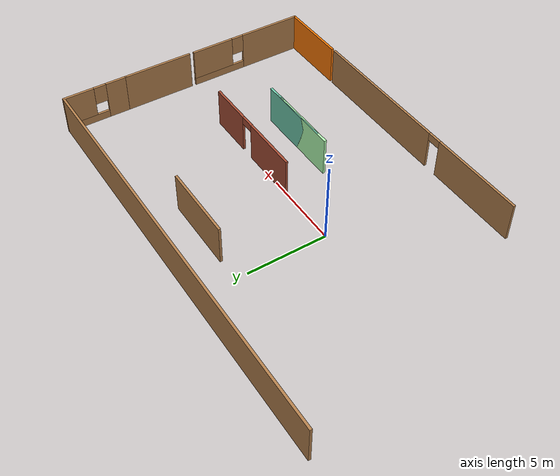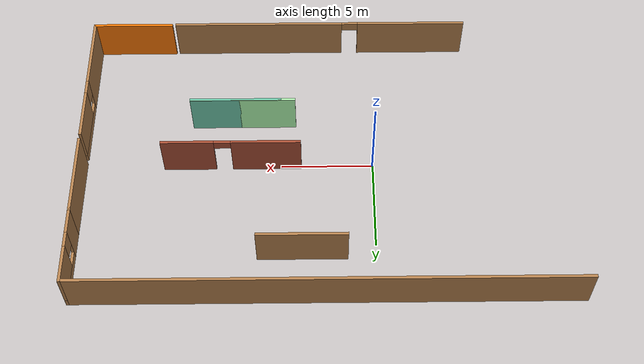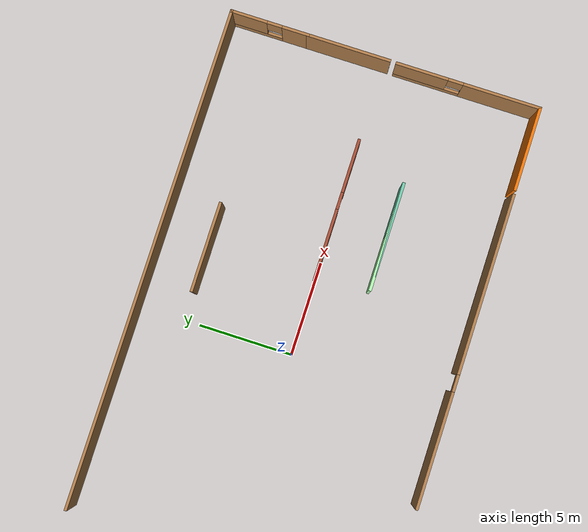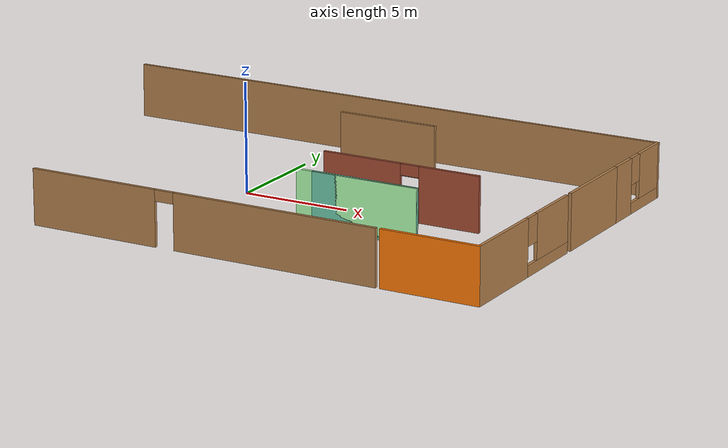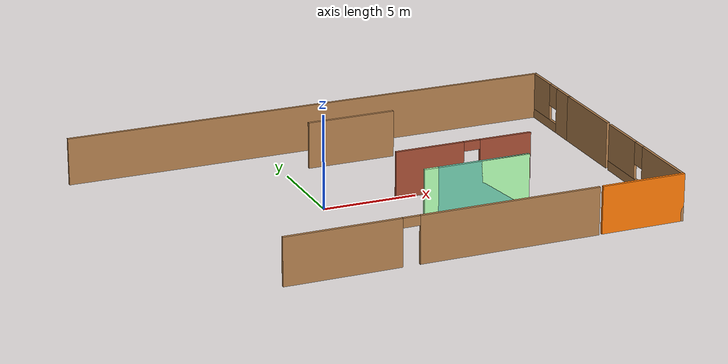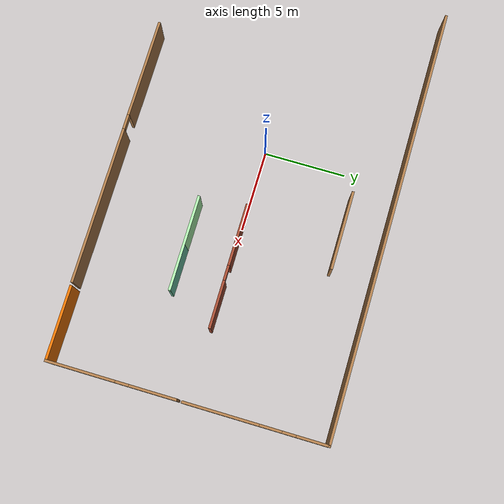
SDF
<sdf version="1.7">
 <model name="floorplan">
  <link name="Wall_10">
   <pose>15.7094 -4.42431 0 0 -0 1.5708</pose>
   <visual name="Wall_10_Visual_0">
    <pose>-1.80178 0 1.25 0 -0 0</pose>
    <geometry><box><size>4.14643 0.15 2.5</size></box></geometry>
    <material>
     <script><uri>file://media/materials/scripts/gazebo.material</uri><name>Gazebo/Wood</name></script>
     <ambient>0.996078 0.47451 0.0196078 1</ambient>
     <shader type="pixel"/>
    </material>
    <meta><layer>0</layer></meta>
   </visual>
   <visual name="Wall_10_Visual_1">
    <pose>2.07322 0 0.25 0 -0 0</pose>
    <geometry><box><size>3.60357 0.15 0.5</size></box></geometry>
    <material>
     <script><uri>file://media/materials/scripts/gazebo.material</uri><name>Gazebo/Wood</name></script>
     <ambient>0.996078 0.47451 0.0196078 1</ambient>
     <shader type="pixel"/>
    </material>
    <meta><layer>0</layer></meta>
   </visual>
   <visual name="Wall_10_Visual_2">
    <pose>2.47322 0 1.5 0 -0 0</pose>
    <geometry><box><size>2.80357 0.15 2</size></box></geometry>
    <material>
     <script><uri>file://media/materials/scripts/gazebo.material</uri><name>Gazebo/Wood</name></script>
     <ambient>0.996078 0.47451 0.0196078 1</ambient>
     <shader type="pixel"/>
    </material>
    <meta><layer>0</layer></meta>
   </visual>
   <visual name="Wall_10_Visual_3">
    <pose>0.671434 0 1.9 0 -0 0</pose>
    <geometry><box><size>0.8 0.15 1.2</size></box></geometry>
    <material>
     <script><uri>file://media/materials/scripts/gazebo.material</uri><name>Gazebo/Wood</name></script>
     <ambient>0.996078 0.47451 0.0196078 1</ambient>
     <shader type="pixel"/>
    </material>
    <meta><layer>0</layer></meta>
   </visual>
   <collision name="Wall_10_Collision_0">
    <pose>-1.80178 0 1.25 0 -0 0</pose>
    <geometry><box><size>4.14643 0.15 2.5</size></box></geometry>
    <surface>
     <friction>
      <ode><mu>1</mu><mu2>1</mu2><fdir1>0 0 0</fdir1><slip1>0</slip1><slip2>0</slip2></ode>
      <torsional>
       <coefficient>1</coefficient>
       <patch_radius>0</patch_radius>
       <surface_radius>0</surface_radius>
       <use_patch_radius>1</use_patch_radius>
       <ode><slip>0</slip></ode>
      </torsional>
     </friction>
     <bounce><restitution_coefficient>0</restitution_coefficient><threshold>1e+06</threshold></bounce>
     <contact>
      <collide_without_contact>0</collide_without_contact>
      <collide_without_contact_bitmask>1</collide_without_contact_bitmask>
      <collide_bitmask>1</collide_bitmask>
      <ode>
       <soft_cfm>0</soft_cfm>
       <soft_erp>0.2</soft_erp>
       <kp>1e+13</kp>
       <kd>1</kd>
       <max_vel>0.01</max_vel>
       <min_depth>0</min_depth>
      </ode>
      <bullet>
       <split_impulse>1</split_impulse>
       <split_impulse_penetration_threshold>-0.01</split_impulse_penetration_threshold>
       <soft_cfm>0</soft_cfm>
       <soft_erp>0.2</soft_erp>
       <kp>1e+13</kp>
       <kd>1</kd>
      </bullet>
     </contact>
    </surface>
   </collision>
   <collision name="Wall_10_Collision_1">
    <pose>2.07322 0 0.25 0 -0 0</pose>
    <geometry><box><size>3.60357 0.15 0.5</size></box></geometry>
    <surface>
     <friction>
      <ode><mu>1</mu><mu2>1</mu2><fdir1>0 0 0</fdir1><slip1>0</slip1><slip2>0</slip2></ode>
      <torsional>
       <coefficient>1</coefficient>
       <patch_radius>0</patch_radius>
       <surface_radius>0</surface_radius>
       <use_patch_radius>1</use_patch_radius>
       <ode><slip>0</slip></ode>
      </torsional>
     </friction>
     <bounce><restitution_coefficient>0</restitution_coefficient><threshold>1e+06</threshold></bounce>
     <contact>
      <collide_without_contact>0</collide_without_contact>
      <collide_without_contact_bitmask>1</collide_without_contact_bitmask>
      <collide_bitmask>1</collide_bitmask>
      <ode>
       <soft_cfm>0</soft_cfm>
       <soft_erp>0.2</soft_erp>
       <kp>1e+13</kp>
       <kd>1</kd>
       <max_vel>0.01</max_vel>
       <min_depth>0</min_depth>
      </ode>
      <bullet>
       <split_impulse>1</split_impulse>
       <split_impulse_penetration_threshold>-0.01</split_impulse_penetration_threshold>
       <soft_cfm>0</soft_cfm>
       <soft_erp>0.2</soft_erp>
       <kp>1e+13</kp>
       <kd>1</kd>
      </bullet>
     </contact>
    </surface>
   </collision>
   <collision name="Wall_10_Collision_2">
    <pose>2.47322 0 1.5 0 -0 0</pose>
    <geometry><box><size>2.80357 0.15 2</size></box></geometry>
    <surface>
     <friction>
      <ode><mu>1</mu><mu2>1</mu2><fdir1>0 0 0</fdir1><slip1>0</slip1><slip2>0</slip2></ode>
      <torsional>
       <coefficient>1</coefficient>
       <patch_radius>0</patch_radius>
       <surface_radius>0</surface_radius>
       <use_patch_radius>1</use_patch_radius>
       <ode><slip>0</slip></ode>
      </torsional>
     </friction>
     <bounce><restitution_coefficient>0</restitution_coefficient><threshold>1e+06</threshold></bounce>
     <contact>
      <collide_without_contact>0</collide_without_contact>
      <collide_without_contact_bitmask>1</collide_without_contact_bitmask>
      <collide_bitmask>1</collide_bitmask>
      <ode>
       <soft_cfm>0</soft_cfm>
       <soft_erp>0.2</soft_erp>
       <kp>1e+13</kp>
       <kd>1</kd>
       <max_vel>0.01</max_vel>
       <min_depth>0</min_depth>
      </ode>
      <bullet>
       <split_impulse>1</split_impulse>
       <split_impulse_penetration_threshold>-0.01</split_impulse_penetration_threshold>
       <soft_cfm>0</soft_cfm>
       <soft_erp>0.2</soft_erp>
       <kp>1e+13</kp>
       <kd>1</kd>
      </bullet>
     </contact>
    </surface>
   </collision>
   <collision name="Wall_10_Collision_3">
    <pose>0.671434 0 1.9 0 -0 0</pose>
    <geometry><box><size>0.8 0.15 1.2</size></box></geometry>
    <surface>
     <friction>
      <ode><mu>1</mu><mu2>1</mu2><fdir1>0 0 0</fdir1><slip1>0</slip1><slip2>0</slip2></ode>
      <torsional>
       <coefficient>1</coefficient>
       <patch_radius>0</patch_radius>
       <surface_radius>0</surface_radius>
       <use_patch_radius>1</use_patch_radius>
       <ode><slip>0</slip></ode>
      </torsional>
     </friction>
     <bounce><restitution_coefficient>0</restitution_coefficient><threshold>1e+06</threshold></bounce>
     <contact>
      <collide_without_contact>0</collide_without_contact>
      <collide_without_contact_bitmask>1</collide_without_contact_bitmask>
      <collide_bitmask>1</collide_bitmask>
      <ode>
       <soft_cfm>0</soft_cfm>
       <soft_erp>0.2</soft_erp>
       <kp>1e+13</kp>
       <kd>1</kd>
       <max_vel>0.01</max_vel>
       <min_depth>0</min_depth>
      </ode>
      <bullet>
       <split_impulse>1</split_impulse>
       <split_impulse_penetration_threshold>-0.01</split_impulse_penetration_threshold>
       <soft_cfm>0</soft_cfm>
       <soft_erp>0.2</soft_erp>
       <kp>1e+13</kp>
       <kd>1</kd>
      </bullet>
     </contact>
    </surface>
   </collision>
  </link>
  <link name="Wall_16">
   <pose>15.725 1.96893 0 0 -0 1.5708</pose>
   <visual name="Wall_16_Visual">
    <pose>0 0 1.25 0 -0 0</pose>
    <geometry><box><size>4.5 0.15 2.5</size></box></geometry>
    <material>
     <script><uri>file://media/materials/scripts/gazebo.material</uri><name>Gazebo/Wood</name></script>
     <ambient>0.996078 0.47451 0.0196078 1</ambient>
     <shader type="pixel"/>
    </material>
    <meta><layer>0</layer></meta>
   </visual>
   <collision name="Wall_16_Collision">
    <pose>0 0 1.25 0 -0 0</pose>
    <geometry><box><size>4.5 0.15 2.5</size></box></geometry>
    <surface>
     <friction>
      <ode><mu>1</mu><mu2>1</mu2><fdir1>0 0 0</fdir1><slip1>0</slip1><slip2>0</slip2></ode>
      <torsional>
       <coefficient>1</coefficient>
       <patch_radius>0</patch_radius>
       <surface_radius>0</surface_radius>
       <use_patch_radius>1</use_patch_radius>
       <ode><slip>0</slip></ode>
      </torsional>
     </friction>
     <bounce><restitution_coefficient>0</restitution_coefficient><threshold>1e+06</threshold></bounce>
     <contact>
      <collide_without_contact>0</collide_without_contact>
      <collide_without_contact_bitmask>1</collide_without_contact_bitmask>
      <collide_bitmask>1</collide_bitmask>
      <ode>
       <soft_cfm>0</soft_cfm>
       <soft_erp>0.2</soft_erp>
       <kp>1e+13</kp>
       <kd>1</kd>
       <max_vel>0.01</max_vel>
       <min_depth>0</min_depth>
      </ode>
      <bullet>
       <split_impulse>1</split_impulse>
       <split_impulse_penetration_threshold>-0.01</split_impulse_penetration_threshold>
       <soft_cfm>0</soft_cfm>
       <soft_erp>0.2</soft_erp>
       <kp>1e+13</kp>
       <kd>1</kd>
      </bullet>
     </contact>
    </surface>
   </collision>
  </link>
  <link name="Wall_20">
   <pose>15.725 6.19393 0 0 -0 1.5708</pose>
   <visual name="Wall_20_Visual_0">
    <pose>-1.39393 0 1.25 0 -0 0</pose>
    <geometry><box><size>1.46215 0.15 2.5</size></box></geometry>
    <material>
     <script><uri>file://media/materials/scripts/gazebo.material</uri><name>Gazebo/Wood</name></script>
     <ambient>1 1 1 1</ambient>
     <shader type="pixel"/>
    </material>
    <meta><layer>0</layer></meta>
   </visual>
   <visual name="Wall_20_Visual_1">
    <pose>0.731073 0 0.25 0 -0 0</pose>
    <geometry><box><size>2.78785 0.15 0.5</size></box></geometry>
    <material>
     <script><uri>file://media/materials/scripts/gazebo.material</uri><name>Gazebo/Wood</name></script>
     <ambient>1 1 1 1</ambient>
     <shader type="pixel"/>
    </material>
    <meta><layer>0</layer></meta>
   </visual>
   <visual name="Wall_20_Visual_2">
    <pose>1.13107 0 1.5 0 -0 0</pose>
    <geometry><box><size>1.98785 0.15 2</size></box></geometry>
    <material>
     <script><uri>file://media/materials/scripts/gazebo.material</uri><name>Gazebo/Wood</name></script>
     <ambient>1 1 1 1</ambient>
     <shader type="pixel"/>
    </material>
    <meta><layer>0</layer></meta>
   </visual>
   <visual name="Wall_20_Visual_3">
    <pose>-0.262854 0 1.9 0 -0 0</pose>
    <geometry><box><size>0.8 0.15 1.2</size></box></geometry>
    <material>
     <script><uri>file://media/materials/scripts/gazebo.material</uri><name>Gazebo/Wood</name></script>
     <ambient>1 1 1 1</ambient>
     <shader type="pixel"/>
    </material>
    <meta><layer>0</layer></meta>
   </visual>
   <collision name="Wall_20_Collision_0">
    <pose>-1.39393 0 1.25 0 -0 0</pose>
    <geometry><box><size>1.46215 0.15 2.5</size></box></geometry>
    <surface>
     <friction>
      <ode><mu>1</mu><mu2>1</mu2><fdir1>0 0 0</fdir1><slip1>0</slip1><slip2>0</slip2></ode>
      <torsional>
       <coefficient>1</coefficient>
       <patch_radius>0</patch_radius>
       <surface_radius>0</surface_radius>
       <use_patch_radius>1</use_patch_radius>
       <ode><slip>0</slip></ode>
      </torsional>
     </friction>
     <bounce><restitution_coefficient>0</restitution_coefficient><threshold>1e+06</threshold></bounce>
     <contact>
      <collide_without_contact>0</collide_without_contact>
      <collide_without_contact_bitmask>1</collide_without_contact_bitmask>
      <collide_bitmask>1</collide_bitmask>
      <ode>
       <soft_cfm>0</soft_cfm>
       <soft_erp>0.2</soft_erp>
       <kp>1e+13</kp>
       <kd>1</kd>
       <max_vel>0.01</max_vel>
       <min_depth>0</min_depth>
      </ode>
      <bullet>
       <split_impulse>1</split_impulse>
       <split_impulse_penetration_threshold>-0.01</split_impulse_penetration_threshold>
       <soft_cfm>0</soft_cfm>
       <soft_erp>0.2</soft_erp>
       <kp>1e+13</kp>
       <kd>1</kd>
      </bullet>
     </contact>
    </surface>
   </collision>
   <collision name="Wall_20_Collision_1">
    <pose>0.731073 0 0.25 0 -0 0</pose>
    <geometry><box><size>2.78785 0.15 0.5</size></box></geometry>
    <surface>
     <friction>
      <ode><mu>1</mu><mu2>1</mu2><fdir1>0 0 0</fdir1><slip1>0</slip1><slip2>0</slip2></ode>
      <torsional>
       <coefficient>1</coefficient>
       <patch_radius>0</patch_radius>
       <surface_radius>0</surface_radius>
       <use_patch_radius>1</use_patch_radius>
       <ode><slip>0</slip></ode>
      </torsional>
     </friction>
     <bounce><restitution_coefficient>0</restitution_coefficient><threshold>1e+06</threshold></bounce>
     <contact>
      <collide_without_contact>0</collide_without_contact>
      <collide_without_contact_bitmask>1</collide_without_contact_bitmask>
      <collide_bitmask>1</collide_bitmask>
      <ode>
       <soft_cfm>0</soft_cfm>
       <soft_erp>0.2</soft_erp>
       <kp>1e+13</kp>
       <kd>1</kd>
       <max_vel>0.01</max_vel>
       <min_depth>0</min_depth>
      </ode>
      <bullet>
       <split_impulse>1</split_impulse>
       <split_impulse_penetration_threshold>-0.01</split_impulse_penetration_threshold>
       <soft_cfm>0</soft_cfm>
       <soft_erp>0.2</soft_erp>
       <kp>1e+13</kp>
       <kd>1</kd>
      </bullet>
     </contact>
    </surface>
   </collision>
   <collision name="Wall_20_Collision_2">
    <pose>1.13107 0 1.5 0 -0 0</pose>
    <geometry><box><size>1.98785 0.15 2</size></box></geometry>
    <surface>
     <friction>
      <ode><mu>1</mu><mu2>1</mu2><fdir1>0 0 0</fdir1><slip1>0</slip1><slip2>0</slip2></ode>
      <torsional>
       <coefficient>1</coefficient>
       <patch_radius>0</patch_radius>
       <surface_radius>0</surface_radius>
       <use_patch_radius>1</use_patch_radius>
       <ode><slip>0</slip></ode>
      </torsional>
     </friction>
     <bounce><restitution_coefficient>0</restitution_coefficient><threshold>1e+06</threshold></bounce>
     <contact>
      <collide_without_contact>0</collide_without_contact>
      <collide_without_contact_bitmask>1</collide_without_contact_bitmask>
      <collide_bitmask>1</collide_bitmask>
      <ode>
       <soft_cfm>0</soft_cfm>
       <soft_erp>0.2</soft_erp>
       <kp>1e+13</kp>
       <kd>1</kd>
       <max_vel>0.01</max_vel>
       <min_depth>0</min_depth>
      </ode>
      <bullet>
       <split_impulse>1</split_impulse>
       <split_impulse_penetration_threshold>-0.01</split_impulse_penetration_threshold>
       <soft_cfm>0</soft_cfm>
       <soft_erp>0.2</soft_erp>
       <kp>1e+13</kp>
       <kd>1</kd>
      </bullet>
     </contact>
    </surface>
   </collision>
   <collision name="Wall_20_Collision_3">
    <pose>-0.262854 0 1.9 0 -0 0</pose>
    <geometry><box><size>0.8 0.15 1.2</size></box></geometry>
    <surface>
     <friction>
      <ode><mu>1</mu><mu2>1</mu2><fdir1>0 0 0</fdir1><slip1>0</slip1><slip2>0</slip2></ode>
      <torsional>
       <coefficient>1</coefficient>
       <patch_radius>0</patch_radius>
       <surface_radius>0</surface_radius>
       <use_patch_radius>1</use_patch_radius>
       <ode><slip>0</slip></ode>
      </torsional>
     </friction>
     <bounce><restitution_coefficient>0</restitution_coefficient><threshold>1e+06</threshold></bounce>
     <contact>
      <collide_without_contact>0</collide_without_contact>
      <collide_without_contact_bitmask>1</collide_without_contact_bitmask>
      <collide_bitmask>1</collide_bitmask>
      <ode>
       <soft_cfm>0</soft_cfm>
       <soft_erp>0.2</soft_erp>
       <kp>1e+13</kp>
       <kd>1</kd>
       <max_vel>0.01</max_vel>
       <min_depth>0</min_depth>
      </ode>
      <bullet>
       <split_impulse>1</split_impulse>
       <split_impulse_penetration_threshold>-0.01</split_impulse_penetration_threshold>
       <soft_cfm>0</soft_cfm>
       <soft_erp>0.2</soft_erp>
       <kp>1e+13</kp>
       <kd>1</kd>
      </bullet>
     </contact>
    </surface>
   </collision>
  </link>
  <link name="Wall_21">
   <pose>2.55 8.24393 0 0 -0 3.14159</pose>
   <visual name="Wall_21_Visual">
    <pose>0 0 1.25 0 -0 0</pose>
    <geometry><box><size>26.5 0.15 2.5</size></box></geometry>
    <material>
     <script><uri>file://media/materials/scripts/gazebo.material</uri><name>Gazebo/Wood</name></script>
     <ambient>0.435294 0.796078 0.67451 1</ambient>
     <shader type="pixel"/>
    </material>
    <meta><layer>0</layer></meta>
   </visual>
   <collision name="Wall_21_Collision">
    <pose>0 0 1.25 0 -0 0</pose>
    <geometry><box><size>26.5 0.15 2.5</size></box></geometry>
    <surface>
     <friction>
      <ode><mu>1</mu><mu2>1</mu2><fdir1>0 0 0</fdir1><slip1>0</slip1><slip2>0</slip2></ode>
      <torsional>
       <coefficient>1</coefficient>
       <patch_radius>0</patch_radius>
       <surface_radius>0</surface_radius>
       <use_patch_radius>1</use_patch_radius>
       <ode><slip>0</slip></ode>
      </torsional>
     </friction>
     <bounce><restitution_coefficient>0</restitution_coefficient><threshold>1e+06</threshold></bounce>
     <contact>
      <collide_without_contact>0</collide_without_contact>
      <collide_without_contact_bitmask>1</collide_without_contact_bitmask>
      <collide_bitmask>1</collide_bitmask>
      <ode>
       <soft_cfm>0</soft_cfm>
       <soft_erp>0.2</soft_erp>
       <kp>1e+13</kp>
       <kd>1</kd>
       <max_vel>0.01</max_vel>
       <min_depth>0</min_depth>
      </ode>
      <bullet>
       <split_impulse>1</split_impulse>
       <split_impulse_penetration_threshold>-0.01</split_impulse_penetration_threshold>
       <soft_cfm>0</soft_cfm>
       <soft_erp>0.2</soft_erp>
       <kp>1e+13</kp>
       <kd>1</kd>
      </bullet>
     </contact>
    </surface>
   </collision>
  </link>
  <link name="Wall_30">
   <pose>7.65692 0.027575 0 0 -0 0</pose>
   <visual name="Wall_30_Visual_0">
    <pose>-1.87765 0 1.25 0 -0 0</pose>
    <geometry><box><size>3.74469 0.15 2.5</size></box></geometry>
    <material>
     <script><uri>file://media/materials/scripts/gazebo.material</uri><name>Gazebo/Bricks</name></script>
     <ambient>1 1 1 1</ambient>
     <shader type="pixel"/>
    </material>
    <meta><layer>0</layer></meta>
   </visual>
   <visual name="Wall_30_Visual_1">
    <pose>2.32235 0 1.25 0 -0 0</pose>
    <geometry><box><size>2.85531 0.15 2.5</size></box></geometry>
    <material>
     <script><uri>file://media/materials/scripts/gazebo.material</uri><name>Gazebo/Bricks</name></script>
     <ambient>1 1 1 1</ambient>
     <shader type="pixel"/>
    </material>
    <meta><layer>0</layer></meta>
   </visual>
   <visual name="Wall_30_Visual_2">
    <pose>0.444693 0 2.25 0 -0 0</pose>
    <geometry><box><size>0.9 0.15 0.5</size></box></geometry>
    <material>
     <script><uri>file://media/materials/scripts/gazebo.material</uri><name>Gazebo/Bricks</name></script>
     <ambient>1 1 1 1</ambient>
     <shader type="pixel"/>
    </material>
    <meta><layer>0</layer></meta>
   </visual>
   <collision name="Wall_30_Collision_0">
    <pose>-1.87765 0 1.25 0 -0 0</pose>
    <geometry><box><size>3.74469 0.15 2.5</size></box></geometry>
    <surface>
     <friction>
      <ode><mu>1</mu><mu2>1</mu2><fdir1>0 0 0</fdir1><slip1>0</slip1><slip2>0</slip2></ode>
      <torsional>
       <coefficient>1</coefficient>
       <patch_radius>0</patch_radius>
       <surface_radius>0</surface_radius>
       <use_patch_radius>1</use_patch_radius>
       <ode><slip>0</slip></ode>
      </torsional>
     </friction>
     <bounce><restitution_coefficient>0</restitution_coefficient><threshold>1e+06</threshold></bounce>
     <contact>
      <collide_without_contact>0</collide_without_contact>
      <collide_without_contact_bitmask>1</collide_without_contact_bitmask>
      <collide_bitmask>1</collide_bitmask>
      <ode>
       <soft_cfm>0</soft_cfm>
       <soft_erp>0.2</soft_erp>
       <kp>1e+13</kp>
       <kd>1</kd>
       <max_vel>0.01</max_vel>
       <min_depth>0</min_depth>
      </ode>
      <bullet>
       <split_impulse>1</split_impulse>
       <split_impulse_penetration_threshold>-0.01</split_impulse_penetration_threshold>
       <soft_cfm>0</soft_cfm>
       <soft_erp>0.2</soft_erp>
       <kp>1e+13</kp>
       <kd>1</kd>
      </bullet>
     </contact>
    </surface>
   </collision>
   <collision name="Wall_30_Collision_1">
    <pose>2.32235 0 1.25 0 -0 0</pose>
    <geometry><box><size>2.85531 0.15 2.5</size></box></geometry>
    <surface>
     <friction>
      <ode><mu>1</mu><mu2>1</mu2><fdir1>0 0 0</fdir1><slip1>0</slip1><slip2>0</slip2></ode>
      <torsional>
       <coefficient>1</coefficient>
       <patch_radius>0</patch_radius>
       <surface_radius>0</surface_radius>
       <use_patch_radius>1</use_patch_radius>
       <ode><slip>0</slip></ode>
      </torsional>
     </friction>
     <bounce><restitution_coefficient>0</restitution_coefficient><threshold>1e+06</threshold></bounce>
     <contact>
      <collide_without_contact>0</collide_without_contact>
      <collide_without_contact_bitmask>1</collide_without_contact_bitmask>
      <collide_bitmask>1</collide_bitmask>
      <ode>
       <soft_cfm>0</soft_cfm>
       <soft_erp>0.2</soft_erp>
       <kp>1e+13</kp>
       <kd>1</kd>
       <max_vel>0.01</max_vel>
       <min_depth>0</min_depth>
      </ode>
      <bullet>
       <split_impulse>1</split_impulse>
       <split_impulse_penetration_threshold>-0.01</split_impulse_penetration_threshold>
       <soft_cfm>0</soft_cfm>
       <soft_erp>0.2</soft_erp>
       <kp>1e+13</kp>
       <kd>1</kd>
      </bullet>
     </contact>
    </surface>
   </collision>
   <collision name="Wall_30_Collision_2">
    <pose>0.444693 0 2.25 0 -0 0</pose>
    <geometry><box><size>0.9 0.15 0.5</size></box></geometry>
    <surface>
     <friction>
      <ode><mu>1</mu><mu2>1</mu2><fdir1>0 0 0</fdir1><slip1>0</slip1><slip2>0</slip2></ode>
      <torsional>
       <coefficient>1</coefficient>
       <patch_radius>0</patch_radius>
       <surface_radius>0</surface_radius>
       <use_patch_radius>1</use_patch_radius>
       <ode><slip>0</slip></ode>
      </torsional>
     </friction>
     <bounce><restitution_coefficient>0</restitution_coefficient><threshold>1e+06</threshold></bounce>
     <contact>
      <collide_without_contact>0</collide_without_contact>
      <collide_without_contact_bitmask>1</collide_without_contact_bitmask>
      <collide_bitmask>1</collide_bitmask>
      <ode>
       <soft_cfm>0</soft_cfm>
       <soft_erp>0.2</soft_erp>
       <kp>1e+13</kp>
       <kd>1</kd>
       <max_vel>0.01</max_vel>
       <min_depth>0</min_depth>
      </ode>
      <bullet>
       <split_impulse>1</split_impulse>
       <split_impulse_penetration_threshold>-0.01</split_impulse_penetration_threshold>
       <soft_cfm>0</soft_cfm>
       <soft_erp>0.2</soft_erp>
       <kp>1e+13</kp>
       <kd>1</kd>
      </bullet>
     </contact>
    </surface>
   </collision>
  </link>
  <link name="Wall_36">
   <pose>3.83685 5.71707 0 0 -0 0</pose>
   <visual name="Wall_36_Visual">
    <pose>0 0 1.25 0 -0 0</pose>
    <geometry><box><size>4.75 0.15 2.5</size></box></geometry>
    <material>
     <script><uri>file://media/materials/scripts/gazebo.material</uri><name>Gazebo/Wood</name></script>
     <ambient>1 1 1 1</ambient>
     <shader type="pixel"/>
    </material>
    <meta><layer>0</layer></meta>
   </visual>
   <collision name="Wall_36_Collision">
    <pose>0 0 1.25 0 -0 0</pose>
    <geometry><box><size>4.75 0.15 2.5</size></box></geometry>
    <surface>
     <friction>
      <ode><mu>1</mu><mu2>1</mu2><fdir1>0 0 0</fdir1><slip1>0</slip1><slip2>0</slip2></ode>
      <torsional>
       <coefficient>1</coefficient>
       <patch_radius>0</patch_radius>
       <surface_radius>0</surface_radius>
       <use_patch_radius>1</use_patch_radius>
       <ode><slip>0</slip></ode>
      </torsional>
     </friction>
     <bounce><restitution_coefficient>0</restitution_coefficient><threshold>1e+06</threshold></bounce>
     <contact>
      <collide_without_contact>0</collide_without_contact>
      <collide_without_contact_bitmask>1</collide_without_contact_bitmask>
      <collide_bitmask>1</collide_bitmask>
      <ode>
       <soft_cfm>0</soft_cfm>
       <soft_erp>0.2</soft_erp>
       <kp>1e+13</kp>
       <kd>1</kd>
       <max_vel>0.01</max_vel>
       <min_depth>0</min_depth>
      </ode>
      <bullet>
       <split_impulse>1</split_impulse>
       <split_impulse_penetration_threshold>-0.01</split_impulse_penetration_threshold>
       <soft_cfm>0</soft_cfm>
       <soft_erp>0.2</soft_erp>
       <kp>1e+13</kp>
       <kd>1</kd>
      </bullet>
     </contact>
    </surface>
   </collision>
  </link>
  <link name="Wall_42">
   <pose>7.47697 -2.78983 0 0 -0 0</pose>
   <visual name="Wall_42_Visual">
    <pose>0 0 1.25 0 -0 0</pose>
    <geometry><box><size>5 0.15 2.5</size></box></geometry>
    <material>
     <script><uri>file://media/materials/scripts/gazebo.material</uri><name>Gazebo/Grey</name></script>
     <ambient>0.435294 0.796078 0.67451 1</ambient>
     <shader type="pixel"/>
    </material>
    <meta><layer>0</layer></meta>
   </visual>
   <collision name="Wall_42_Collision">
    <pose>0 0 1.25 0 -0 0</pose>
    <geometry><box><size>5 0.15 2.5</size></box></geometry>
    <surface>
     <friction>
      <ode><mu>1</mu><mu2>1</mu2><fdir1>0 0 0</fdir1><slip1>0</slip1><slip2>0</slip2></ode>
      <torsional>
       <coefficient>1</coefficient>
       <patch_radius>0</patch_radius>
       <surface_radius>0</surface_radius>
       <use_patch_radius>1</use_patch_radius>
       <ode><slip>0</slip></ode>
      </torsional>
     </friction>
     <bounce><restitution_coefficient>0</restitution_coefficient><threshold>1e+06</threshold></bounce>
     <contact>
      <collide_without_contact>0</collide_without_contact>
      <collide_without_contact_bitmask>1</collide_without_contact_bitmask>
      <collide_bitmask>1</collide_bitmask>
      <ode>
       <soft_cfm>0</soft_cfm>
       <soft_erp>0.2</soft_erp>
       <kp>1e+13</kp>
       <kd>1</kd>
       <max_vel>0.01</max_vel>
       <min_depth>0</min_depth>
      </ode>
      <bullet>
       <split_impulse>1</split_impulse>
       <split_impulse_penetration_threshold>-0.01</split_impulse_penetration_threshold>
       <soft_cfm>0</soft_cfm>
       <soft_erp>0.2</soft_erp>
       <kp>1e+13</kp>
       <kd>1</kd>
      </bullet>
     </contact>
    </surface>
   </collision>
  </link>
  <link name="Wall_43">
   <pose>7.10197 -2.78983 0 0 -0 3.14159</pose>
   <inertial>
    <mass>1</mass>
    <inertia><ixx>1</ixx><ixy>0</ixy><ixz>0</ixz><iyy>1</iyy><iyz>0</iyz><izz>1</izz></inertia>
   </inertial>
   <visual name="Wall_43_Visual">
    <pose>0 0 1.25 0 -0 0</pose>
    <geometry><box><size>5.75 0.15 2.5</size></box></geometry>
    <material>
     <script><uri>file://media/materials/scripts/gazebo.material</uri><name>Gazebo/Grey</name></script>
     <ambient>1 1 1 1</ambient>
     <shader type="pixel"><normal_map>__default__</normal_map></shader>
     <diffuse>0.7 1 0.7 1</diffuse>
     <specular>0.01 1 0.01 1</specular>
     <emissive>0 1 0 1</emissive>
    </material>
    <meta><layer>0</layer></meta>
   </visual>
   <collision name="Wall_43_Collision">
    <pose>0 0 1.25 0 -0 0</pose>
    <geometry><box><size>5.75 0.15 2.5</size></box></geometry>
    <surface>
     <friction>
      <ode><mu>1</mu><mu2>1</mu2><fdir1>0 0 0</fdir1><slip1>0</slip1><slip2>0</slip2></ode>
      <torsional>
       <coefficient>1</coefficient>
       <patch_radius>0</patch_radius>
       <surface_radius>0</surface_radius>
       <use_patch_radius>1</use_patch_radius>
       <ode><slip>0</slip></ode>
      </torsional>
     </friction>
     <bounce><restitution_coefficient>0</restitution_coefficient><threshold>1e+06</threshold></bounce>
     <contact>
      <collide_without_contact>0</collide_without_contact>
      <collide_without_contact_bitmask>1</collide_without_contact_bitmask>
      <collide_bitmask>1</collide_bitmask>
      <ode>
       <soft_cfm>0</soft_cfm>
       <soft_erp>0.2</soft_erp>
       <kp>1e+13</kp>
       <kd>1</kd>
       <max_vel>0.01</max_vel>
       <min_depth>0</min_depth>
      </ode>
      <bullet>
       <split_impulse>1</split_impulse>
       <split_impulse_penetration_threshold>-0.01</split_impulse_penetration_threshold>
       <soft_cfm>0</soft_cfm>
       <soft_erp>0.2</soft_erp>
       <kp>1e+13</kp>
       <kd>1</kd>
      </bullet>
     </contact>
    </surface>
   </collision>
  </link>
  <link name="Wall_7">
   <pose>2.86483 -8.24393 0 0 -0 0</pose>
   <visual name="Wall_7_Visual_0">
    <pose>-5.20927 0 1.25 0 -0 0</pose>
    <geometry><box><size>6.08146 0.15 2.5</size></box></geometry>
    <material>
     <script><uri>file://media/materials/scripts/gazebo.material</uri><name>Gazebo/Wood</name></script>
     <ambient>0.996078 0.47451 0.0196078 1</ambient>
     <shader type="pixel"/>
    </material>
    <meta><layer>0</layer></meta>
   </visual>
   <visual name="Wall_7_Visual_1">
    <pose>3.49073 0 1.25 0 -0 0</pose>
    <geometry><box><size>9.51854 0.15 2.5</size></box></geometry>
    <material>
     <script><uri>file://media/materials/scripts/gazebo.material</uri><name>Gazebo/Wood</name></script>
     <ambient>0.996078 0.47451 0.0196078 1</ambient>
     <shader type="pixel"/>
    </material>
    <meta><layer>0</layer></meta>
   </visual>
   <visual name="Wall_7_Visual_2">
    <pose>-1.71854 0 2.25 0 -0 0</pose>
    <geometry><box><size>0.9 0.15 0.5</size></box></geometry>
    <material>
     <script><uri>file://media/materials/scripts/gazebo.material</uri><name>Gazebo/Wood</name></script>
     <ambient>0.996078 0.47451 0.0196078 1</ambient>
     <shader type="pixel"/>
    </material>
    <meta><layer>0</layer></meta>
   </visual>
   <collision name="Wall_7_Collision_0">
    <pose>-5.20927 0 1.25 0 -0 0</pose>
    <geometry><box><size>6.08146 0.15 2.5</size></box></geometry>
    <surface>
     <friction>
      <ode><mu>1</mu><mu2>1</mu2><fdir1>0 0 0</fdir1><slip1>0</slip1><slip2>0</slip2></ode>
      <torsional>
       <coefficient>1</coefficient>
       <patch_radius>0</patch_radius>
       <surface_radius>0</surface_radius>
       <use_patch_radius>1</use_patch_radius>
       <ode><slip>0</slip></ode>
      </torsional>
     </friction>
     <bounce><restitution_coefficient>0</restitution_coefficient><threshold>1e+06</threshold></bounce>
     <contact>
      <collide_without_contact>0</collide_without_contact>
      <collide_without_contact_bitmask>1</collide_without_contact_bitmask>
      <collide_bitmask>1</collide_bitmask>
      <ode>
       <soft_cfm>0</soft_cfm>
       <soft_erp>0.2</soft_erp>
       <kp>1e+13</kp>
       <kd>1</kd>
       <max_vel>0.01</max_vel>
       <min_depth>0</min_depth>
      </ode>
      <bullet>
       <split_impulse>1</split_impulse>
       <split_impulse_penetration_threshold>-0.01</split_impulse_penetration_threshold>
       <soft_cfm>0</soft_cfm>
       <soft_erp>0.2</soft_erp>
       <kp>1e+13</kp>
       <kd>1</kd>
      </bullet>
     </contact>
    </surface>
   </collision>
   <collision name="Wall_7_Collision_1">
    <pose>3.49073 0 1.25 0 -0 0</pose>
    <geometry><box><size>9.51854 0.15 2.5</size></box></geometry>
    <surface>
     <friction>
      <ode><mu>1</mu><mu2>1</mu2><fdir1>0 0 0</fdir1><slip1>0</slip1><slip2>0</slip2></ode>
      <torsional>
       <coefficient>1</coefficient>
       <patch_radius>0</patch_radius>
       <surface_radius>0</surface_radius>
       <use_patch_radius>1</use_patch_radius>
       <ode><slip>0</slip></ode>
      </torsional>
     </friction>
     <bounce><restitution_coefficient>0</restitution_coefficient><threshold>1e+06</threshold></bounce>
     <contact>
      <collide_without_contact>0</collide_without_contact>
      <collide_without_contact_bitmask>1</collide_without_contact_bitmask>
      <collide_bitmask>1</collide_bitmask>
      <ode>
       <soft_cfm>0</soft_cfm>
       <soft_erp>0.2</soft_erp>
       <kp>1e+13</kp>
       <kd>1</kd>
       <max_vel>0.01</max_vel>
       <min_depth>0</min_depth>
      </ode>
      <bullet>
       <split_impulse>1</split_impulse>
       <split_impulse_penetration_threshold>-0.01</split_impulse_penetration_threshold>
       <soft_cfm>0</soft_cfm>
       <soft_erp>0.2</soft_erp>
       <kp>1e+13</kp>
       <kd>1</kd>
      </bullet>
     </contact>
    </surface>
   </collision>
   <collision name="Wall_7_Collision_2">
    <pose>-1.71854 0 2.25 0 -0 0</pose>
    <geometry><box><size>0.9 0.15 0.5</size></box></geometry>
    <surface>
     <friction>
      <ode><mu>1</mu><mu2>1</mu2><fdir1>0 0 0</fdir1><slip1>0</slip1><slip2>0</slip2></ode>
      <torsional>
       <coefficient>1</coefficient>
       <patch_radius>0</patch_radius>
       <surface_radius>0</surface_radius>
       <use_patch_radius>1</use_patch_radius>
       <ode><slip>0</slip></ode>
      </torsional>
     </friction>
     <bounce><restitution_coefficient>0</restitution_coefficient><threshold>1e+06</threshold></bounce>
     <contact>
      <collide_without_contact>0</collide_without_contact>
      <collide_without_contact_bitmask>1</collide_without_contact_bitmask>
      <collide_bitmask>1</collide_bitmask>
      <ode>
       <soft_cfm>0</soft_cfm>
       <soft_erp>0.2</soft_erp>
       <kp>1e+13</kp>
       <kd>1</kd>
       <max_vel>0.01</max_vel>
       <min_depth>0</min_depth>
      </ode>
      <bullet>
       <split_impulse>1</split_impulse>
       <split_impulse_penetration_threshold>-0.01</split_impulse_penetration_threshold>
       <soft_cfm>0</soft_cfm>
       <soft_erp>0.2</soft_erp>
       <kp>1e+13</kp>
       <kd>1</kd>
      </bullet>
     </contact>
    </surface>
   </collision>
  </link>
  <link name="Wall_9">
   <pose>13.5344 -8.22431 0 0 -0 0</pose>
   <visual name="Wall_9_Visual">
    <pose>0 0 1.25 0 -0 0</pose>
    <geometry><box><size>4.5 0.15 2.5</size></box></geometry>
    <material>
     <script><uri>file://media/materials/scripts/gazebo.material</uri><name>Gazebo/Grey</name></script>
     <ambient>0.996078 0.47451 0.0196078 1</ambient>
     <shader type="pixel"/>
    </material>
    <meta><layer>0</layer></meta>
   </visual>
   <collision name="Wall_9_Collision">
    <pose>0 0 1.25 0 -0 0</pose>
    <geometry><box><size>4.5 0.15 2.5</size></box></geometry>
    <surface>
     <friction>
      <ode><mu>1</mu><mu2>1</mu2><fdir1>0 0 0</fdir1><slip1>0</slip1><slip2>0</slip2></ode>
      <torsional>
       <coefficient>1</coefficient>
       <patch_radius>0</patch_radius>
       <surface_radius>0</surface_radius>
       <use_patch_radius>1</use_patch_radius>
       <ode><slip>0</slip></ode>
      </torsional>
     </friction>
     <bounce><restitution_coefficient>0</restitution_coefficient><threshold>1e+06</threshold></bounce>
     <contact>
      <collide_without_contact>0</collide_without_contact>
      <collide_without_contact_bitmask>1</collide_without_contact_bitmask>
      <collide_bitmask>1</collide_bitmask>
      <ode>
       <soft_cfm>0</soft_cfm>
       <soft_erp>0.2</soft_erp>
       <kp>1e+13</kp>
       <kd>1</kd>
       <max_vel>0.01</max_vel>
       <min_depth>0</min_depth>
      </ode>
      <bullet>
       <split_impulse>1</split_impulse>
       <split_impulse_penetration_threshold>-0.01</split_impulse_penetration_threshold>
       <soft_cfm>0</soft_cfm>
       <soft_erp>0.2</soft_erp>
       <kp>1e+13</kp>
       <kd>1</kd>
      </bullet>
     </contact>
    </surface>
   </collision>
  </link>
  <static>1</static>
 </model>
</sdf>
